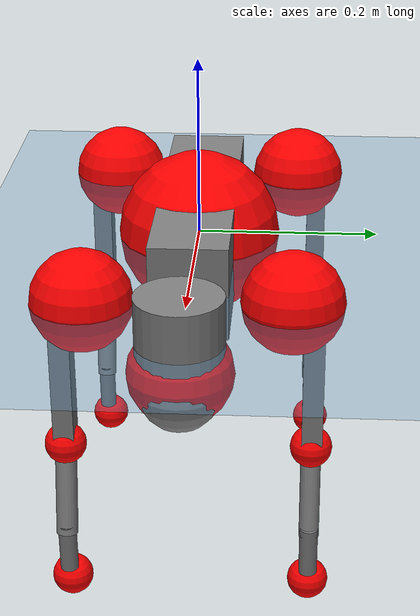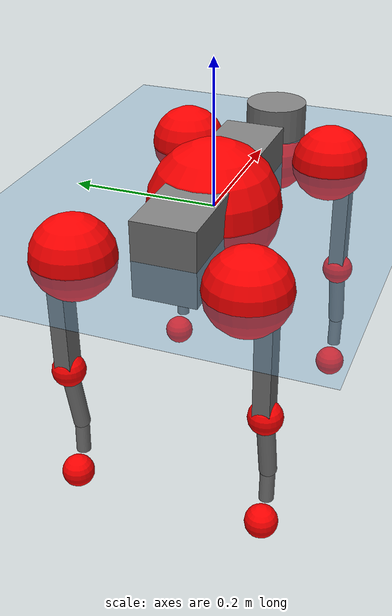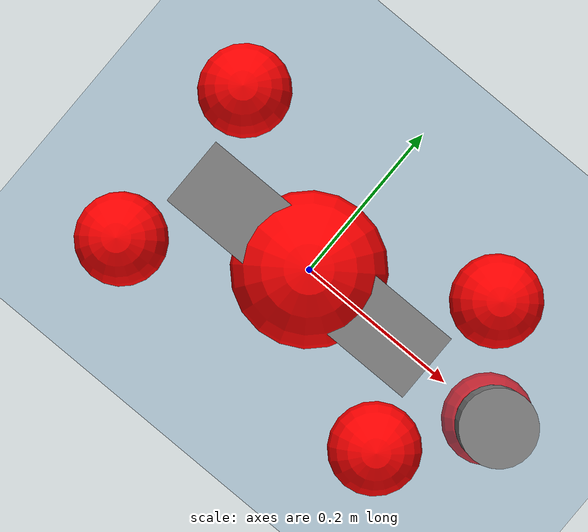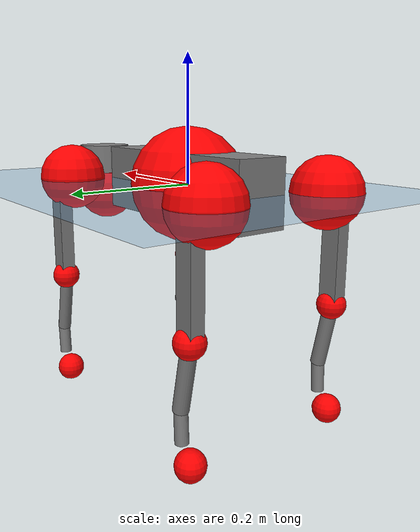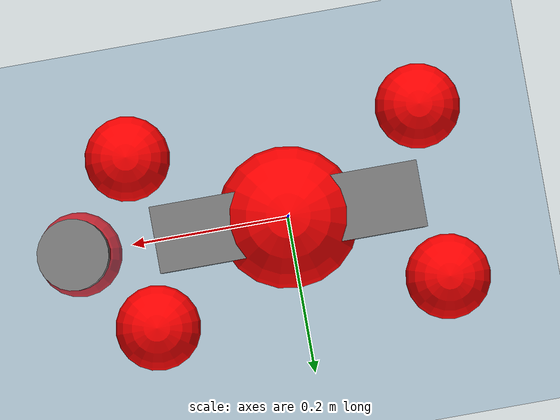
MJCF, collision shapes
<mujoco model="go2">
  <compiler angle="radian" assetdir="assets" balanceinertia="true" inertiafromgeom="false"/>

  <option timestep="0.005" density="1.2" viscosity="2e-05"/>

  <size nkey="1"/>

  <visual>
    <quality shadowsize="8192"/>
    <map shadowclip="0.5"/>
  </visual>

  <default>
    <default class="/">
      <geom contype="0" conaffinity="0" group="1" solref="-1000 -80"/>
      <site size="0.01 0.005 0.005" group="5"/>
      <general forcelimited="true" biastype="affine" gainprm="20" biasprm="0 -20 -0.5"/>
      <default class="go2">
        <joint armature="0.01" damping="0.01" frictionloss="0.2"/>
        <geom condim="1" margin="0.001"/>
        <default class="visual">
          <geom type="mesh" group="2"/>
        </default>
        <default class="collision">
          <geom group="3"/>
          <default class="foot">
            <geom size="0.022 0 0" condim="6" priority="1" friction="0.8 0.02 0.01" solimp="0.015 1 0.022"/>
          </default>
        </default>
        <default class="reward_collision_sphere">
          <geom group="5" rgba="1 0 0 1"/>
        </default>
      </default>
    </default>
  </default>

  <asset>
    <texture type="skybox" colorspace="auto" name="//unnamed_texture_0" builtin="gradient" rgb1="0.95 0.95 0.95" rgb2="0.95 0.95 0.95" width="100" height="600"/>
    <texture type="2d" colorspace="auto" name="texplane" builtin="checker" rgb1="0.345 0.575 0.748" rgb2="0.345 0.575 0.748" markrgb="1 1 1" width="512" height="512"/>
    <material name="MatPlane" class="/" texture="texplane" texuniform="true" texrepeat="2 2" specular="0.9"/>
    <material name="metal" class="/" rgba="0.9 0.95 0.95 1"/>
    <material name="black" class="/" rgba="0 0 0 1"/>
    <material name="white" class="/"/>
    <material name="gray" class="/" rgba="0.671705 0.692426 0.77427 1"/>
    <mesh name="base_0" class="/" file="base_0.obj"/>
    <mesh name="base_1" class="/" file="base_1.obj"/>
    <mesh name="base_2" class="/" file="base_2.obj"/>
    <mesh name="base_3" class="/" file="base_3.obj"/>
    <mesh name="base_4" class="/" file="base_4.obj"/>
    <mesh name="hip_0" class="/" file="hip_0.obj"/>
    <mesh name="hip_1" class="/" file="hip_1.obj"/>
    <mesh name="thigh_0" class="/" file="thigh_0.obj"/>
    <mesh name="thigh_1" class="/" file="thigh_1.obj"/>
    <mesh name="thigh_mirror_0" class="/" file="thigh_mirror_0.obj"/>
    <mesh name="thigh_mirror_1" class="/" file="thigh_mirror_1.obj"/>
    <mesh name="calf_0" class="/" file="calf_0.obj"/>
    <mesh name="calf_1" class="/" file="calf_1.obj"/>
    <mesh name="calf_mirror_0" class="/" file="calf_mirror_0.obj"/>
    <mesh name="calf_mirror_1" class="/" file="calf_mirror_1.obj"/>
    <mesh name="foot" class="/" file="foot.obj"/>
  </asset>

  <worldbody>
    <geom name="floor" class="/" size="100 100 0.125" type="plane" group="0" material="MatPlane"/>
    <light name="toplight_shadow" class="/" pos="0 0 5" dir="0.0990148 0.0990148 -0.990148" type="directional" ambient="0.04 0.04 0.04" diffuse="0.55 0.55 0.55" specular="0.12 0.12 0.12"/>
    <light name="toplight_fill" class="/" pos="0 0 5" dir="0.0990148 0.0990148 -0.990148" type="directional" castshadow="false" ambient="0.04 0.04 0.04" diffuse="0.3 0.3 0.3" specular="0.08 0.08 0.08"/>
    <body name="trunk" childclass="go2" pos="-0.000263999 -7.95427e-05 0.00086207" quat="1 4.63625e-05 -3.96042e-06 4.01912e-05">
      <inertial pos="0.0208922 0.000347204 -0.00485977" quat="-0.000751069 0.713408 -0.00131773 0.700747" mass="5.07192" diaginertia="0.0881343 0.0718296 0.00862289"/>
      <joint name="//unnamed_joint_0" type="free" armature="0" damping="0" frictionloss="0"/>
      <geom name="//unnamed_geom_1" class="visual" material="black" mesh="base_0"/>
      <geom name="//unnamed_geom_2" class="visual" material="black" mesh="base_1"/>
      <geom name="//unnamed_geom_3" class="visual" material="black" mesh="base_2"/>
      <geom name="//unnamed_geom_4" class="visual" material="white" mesh="base_3"/>
      <geom name="//unnamed_geom_5" class="visual" material="gray" mesh="base_4"/>
      <geom name="trunk_1" class="collision" size="0.170358 0.0423403 0.0516235" type="box"/>
      <geom name="trunk_2" class="collision" size="0.0452838 0.0407554" pos="0.274732 0 0.00812434" type="cylinder"/>
      <geom name="trunk_3" class="collision" size="0.0425668" pos="0.282444 0 -0.048746"/>
      <geom name="//unnamed_geom_9" class="reward_collision_sphere" size="0.0905676"/>
      <geom name="//unnamed_geom_10" class="reward_collision_sphere" size="0.0543405" pos="0.269912 0 -0.0365595"/>
      <site name="imu" pos="-0.027183 -0.000509692 0.0330457" size="0.00905676"/>
      <camera name="track" pos="0 -1.88124 0" quat="0.707107 0.707107 0 0" mode="trackcom"/>
      <camera name="ego_camera" pos="0.300759 0 0.0365595" quat="-0.5 -0.5 0.5 0.5"/>
      <body name="FL_hip" pos="0.18642 0.0434699 0.00213874" quat="1 3.26119e-06 -1.06034e-05 3.84755e-06">
        <inertial pos="-0.00523384 0.00239396 0.000158063" quat="0.499631 0.497568 0.503035 0.49975" mass="0.504685" diaginertia="0.000736028 0.000438364 0.000170489"/>
        <joint name="FL_hip_joint" pos="0 0 0" axis="0.999997 0.00130117 -0.00218755" range="-1.04275 1.03366" armature="0.00913841" damping="0.00209511" frictionloss="0.177869"/>
        <geom name="//unnamed_geom_11" class="visual" material="metal" mesh="hip_0"/>
        <geom name="//unnamed_geom_12" class="visual" material="gray" mesh="hip_1"/>
        <geom name="//unnamed_geom_13" class="collision" size="0.0416611 0.0181135" pos="0 0.0752497 0" quat="0.707107 0.707107 0 0" type="cylinder"/>
        <geom name="//unnamed_geom_14" class="reward_collision_sphere" size="0.0543405" pos="0 0.0658435 0"/>
        <body name="FL_thigh" pos="-0.000513396 0.0887077 0.00148978" quat="1 -0.000310801 -9.84256e-05 2.76113e-05">
          <inertial pos="-0.00420392 -0.0208015 -0.0266148" quat="0.829769 0.0837112 -0.0217594 0.551365" mass="0.843413" diaginertia="0.00493869 0.00428298 0.000308529"/>
          <joint name="FL_thigh_joint" pos="0 0 0" axis="-0.000230098 0.999998 -0.00172043" stiffness="0.00494062" range="-1.57859 3.50251" armature="0.0091899" damping="0.00464865" frictionloss="0.183446"/>
          <geom name="//unnamed_geom_15" class="visual" material="metal" mesh="thigh_0"/>
          <geom name="//unnamed_geom_16" class="visual" material="gray" mesh="thigh_1"/>
          <geom name="//unnamed_geom_17" class="collision" size="0.0964545 0.0110945 0.0153965" pos="0 0 -0.0865242" quat="0.707107 0 0.707107 0" type="box"/>
          <body name="FL_calf" pos="-0.00156592 -0.000732247 -0.173397" quat="1 7.81441e-05 -0.000383232 6.0921e-06">
            <inertial pos="0.005715 -0.000368912 -0.114685" quat="0.710929 0.00166712 -0.00224616 0.703259" mass="0.181216" diaginertia="0.00125173 0.00108025 1.88707e-05"/>
            <joint name="FL_calf_joint" pos="0 0 0" axis="-0.00415483 0.999989 -0.00200383" stiffness="0.00146111" range="-2.70605 -0.840194" armature="0.00869634" damping="0.00448088" frictionloss="0.173275"/>
            <geom name="//unnamed_geom_18" class="visual" material="gray" mesh="calf_0"/>
            <geom name="//unnamed_geom_19" class="visual" material="black" mesh="calf_1"/>
            <geom name="FL_calf0" class="collision" size="0.0108681 0.0543405" pos="0.00771177 0 -0.048746" quat="0.994493 0 -0.104807 0" type="cylinder"/>
            <geom name="//unnamed_geom_21" class="collision" size="0.00996243 0.0294345" pos="0.0192794 0 -0.12024" quat="0.999688 0 0.0249974 0" type="cylinder"/>
            <geom name="//unnamed_geom_22" class="visual" pos="0 0 -0.173048" quat="1 0 0 0" material="black" mesh="foot"/>
            <geom name="FL_foot" class="foot" size="0.017446" pos="-0.00192794 0 -0.173048"/>
            <geom name="//unnamed_geom_24" class="reward_collision_sphere" size="0.0226419"/>
            <geom name="//unnamed_geom_25" class="reward_collision_sphere" size="0.0226419" pos="-0.00192794 0 -0.173048"/>
            <site name="FL_foot" class="foot" pos="-0.00192794 0 -0.173048" size="0.00905676"/>
          </body>
        </body>
      </body>
      <body name="FR_hip" pos="0.187893 -0.0427228 -4.61132e-05" quat="1 -4.34817e-06 -5.70493e-06 -5.21186e-06">
        <inertial pos="-0.00532243 -0.00148335 -0.000635622" quat="0.498238 0.50567 0.498473 0.497576" mass="0.495239" diaginertia="0.000731327 0.000429716 0.000167991"/>
        <joint name="FR_hip_joint" pos="0 0 0" axis="0.999999 0.000155677 -0.00128958" stiffness="0.00364346" range="-1.04599 1.05148" armature="0.0092295" damping="0.0130582" frictionloss="0.183296"/>
        <geom name="//unnamed_geom_26" class="visual" pos="0 1.11672e-09 4.78984e-08" quat="4.63268e-05 1 0 0" material="metal" mesh="hip_0"/>
        <geom name="//unnamed_geom_27" class="visual" pos="0 1.81034e-09 -1.18471e-07" quat="4.63268e-05 1 0 0" material="gray" mesh="hip_1"/>
        <geom name="//unnamed_geom_28" class="collision" size="0.0416611 0.0181135" pos="0 -0.0752497 0" quat="0.707107 0.707107 0 0" type="cylinder"/>
        <geom name="//unnamed_geom_29" class="reward_collision_sphere" size="0.0543405" pos="0 -0.0658435 0"/>
        <body name="FR_thigh" pos="0.000733439 -0.0895349 0.00113522" quat="1 1.59464e-06 0.000116933 -0.000129624">
          <inertial pos="-0.00349058 0.0211944 -0.0261962" quat="0.551527 -0.0219035 0.0844952 0.829577" mass="0.862514" diaginertia="0.00498275 0.00429318 0.000311963"/>
          <joint name="FR_thigh_joint" pos="0 0 0" axis="0.00136803 -0.999999 -0.000146221" range="-3.48294 1.55313" armature="0.00909662" damping="0.0114707" frictionloss="0.189187"/>
          <geom name="//unnamed_geom_30" class="visual" material="metal" mesh="thigh_mirror_0"/>
          <geom name="//unnamed_geom_31" class="visual" material="gray" mesh="thigh_mirror_1"/>
          <geom name="//unnamed_geom_32" class="collision" size="0.0964545 0.0110945 0.0153965" pos="0 0 -0.0865242" quat="0.707107 0 0.707107 0" type="box"/>
          <body name="FR_calf" pos="-0.000387095 -0.000321662 -0.172452" quat="1 7.05622e-05 -1.94016e-05 -6.03186e-05">
            <inertial pos="0.00613883 0.000966475 -0.115203" quat="0.701859 -0.00113499 0.00113742 0.712314" mass="0.17866" diaginertia="0.00123294 0.00108502 1.87321e-05"/>
            <joint name="FR_calf_joint" pos="0 0 0" axis="-0.00130006 -0.999995 0.00301226" range="0.852596 2.70454" armature="0.0089558" damping="0.00889948" frictionloss="0.178647"/>
            <geom name="//unnamed_geom_33" class="visual" material="gray" mesh="calf_mirror_0"/>
            <geom name="//unnamed_geom_34" class="visual" material="black" mesh="calf_mirror_1"/>
            <geom name="FR_calf0" class="collision" size="0.0117738 0.0543405" pos="0.00963972 0 -0.048746" quat="0.995004 0 -0.0998334 0" type="cylinder"/>
            <geom name="//unnamed_geom_36" class="collision" size="0.00996243 0.0294345" pos="0.0192794 0 -0.12024" quat="0.999688 0 0.0249974 0" type="cylinder"/>
            <geom name="//unnamed_geom_37" class="visual" pos="0 0 -0.173048" quat="1 0 0 0" material="black" mesh="foot"/>
            <geom name="FR_foot" class="foot" size="0.0204697" pos="-0.00192794 0 -0.173048"/>
            <geom name="//unnamed_geom_39" class="reward_collision_sphere" size="0.0226419"/>
            <geom name="//unnamed_geom_40" class="reward_collision_sphere" size="0.0226419" pos="-0.00192794 0 -0.173048"/>
            <site name="FR_foot" class="foot" pos="-0.00192794 0 -0.173048" size="0.00905676"/>
          </body>
        </body>
      </body>
      <body name="RL_hip" pos="-0.18696 0.0434067 -9.78311e-05" quat="1 8.20383e-06 -0.000188451 -0.000170609">
        <inertial pos="0.00478728 0.00216805 -0.00035797" quat="0.507697 0.494881 0.498488 0.498845" mass="0.501506" diaginertia="0.000738898 0.000443057 0.000171379"/>
        <joint name="RL_hip_joint" pos="0 0 0" axis="-0.9998 0.0181581 0.00834271" range="-1.04774 1.02884" armature="0.0091467" damping="0.0165127" frictionloss="0.18194"/>
        <geom name="//unnamed_geom_41" class="visual" pos="-1.32014e-09 0 -2.58777e-07" quat="4.63268e-05 0 1 0" material="metal" mesh="hip_0"/>
        <geom name="//unnamed_geom_42" class="visual" pos="-2.1401e-09 0 -2.29499e-07" quat="4.63268e-05 0 1 0" material="gray" mesh="hip_1"/>
        <geom name="//unnamed_geom_43" class="collision" size="0.0416611 0.0181135" pos="0 0.0752497 0" quat="0.707107 0.707107 0 0" type="cylinder"/>
        <geom name="//unnamed_geom_44" class="reward_collision_sphere" size="0.0543405" pos="0 0.0658435 0"/>
        <body name="RL_thigh" pos="0.000863194 0.0889352 -0.00110094" quat="1 1.69123e-05 7.34734e-07 1.77331e-05">
          <inertial pos="-0.00356887 -0.0213465 -0.0266669" quat="0.829328 0.0862134 -0.019816 0.551715" mass="0.855051" diaginertia="0.00495474 0.00434507 0.000312092"/>
          <joint name="RL_thigh_joint" pos="0 0 0" axis="0.000998846 0.999999 0.000733613" range="-0.519389 4.5386" armature="0.00935141" damping="0.0119069" frictionloss="0.181572"/>
          <geom name="//unnamed_geom_45" class="visual" material="metal" mesh="thigh_0"/>
          <geom name="//unnamed_geom_46" class="visual" material="gray" mesh="thigh_1"/>
          <geom name="//unnamed_geom_47" class="collision" size="0.0964545 0.0110945 0.0153965" pos="0 0 -0.0865242" quat="0.707107 0 0.707107 0" type="box"/>
          <body name="RL_calf" pos="0.00115856 -0.000100656 -0.173093" quat="1 0.000149029 8.00209e-06 -6.05926e-05">
            <inertial pos="0.00612686 -0.000476417 -0.114567" quat="0.70983 0.00155944 -0.000613033 0.704371" mass="0.179097" diaginertia="0.00123434 0.00107595 1.86604e-05"/>
            <joint name="RL_calf_joint" pos="0 0 0" axis="0.00749963 0.99994 0.00804358" range="-2.71931 -0.835195" armature="0.00937449" damping="0.00227692" frictionloss="0.173248"/>
            <geom name="//unnamed_geom_48" class="visual" material="gray" mesh="calf_0"/>
            <geom name="//unnamed_geom_49" class="visual" material="black" mesh="calf_1"/>
            <geom name="RL_calf0" class="collision" size="0.0117738 0.0543405" pos="0.00963972 0 -0.048746" quat="0.995004 0 -0.0998334 0" type="cylinder"/>
            <geom name="//unnamed_geom_51" class="collision" size="0.00996243 0.0294345" pos="0.0192794 0 -0.12024" quat="0.999688 0 0.0249974 0" type="cylinder"/>
            <geom name="//unnamed_geom_52" class="visual" pos="0 0 -0.173048" quat="1 0 0 0" material="black" mesh="foot"/>
            <geom name="RL_foot" class="foot" size="0.0181139" pos="-0.00192794 0 -0.173048"/>
            <geom name="//unnamed_geom_54" class="reward_collision_sphere" size="0.0226419"/>
            <geom name="//unnamed_geom_55" class="reward_collision_sphere" size="0.0226419" pos="-0.00192794 0 -0.173048"/>
            <site name="RL_foot" class="foot" pos="-0.00192794 0 -0.173048" size="0.00905676"/>
          </body>
        </body>
      </body>
      <body name="RR_hip" pos="-0.186663 -0.0447151 -0.00187683" quat="1 0.00012447 5.16193e-05 0.000266468">
        <inertial pos="0.00507587 -0.00195394 -0.000351756" quat="0.497566 0.498156 0.498315 0.505915" mass="0.508052" diaginertia="0.000740986 0.000441888 0.000170561"/>
        <joint name="RR_hip_joint" pos="0 0 0" axis="-0.999999 -0.000853519 0.00109701" stiffness="0.00229222" range="-1.03726 1.0573" armature="0.00907847" damping="0.00723573" frictionloss="0.179805"/>
        <geom name="//unnamed_geom_56" class="visual" pos="1.31933e-09 1.11672e-09 -3.06676e-07" quat="2.14617e-09 4.63268e-05 4.63268e-05 -1" material="metal" mesh="hip_0"/>
        <geom name="//unnamed_geom_57" class="visual" pos="2.1421e-09 1.81034e-09 -1.11027e-07" quat="2.14617e-09 4.63268e-05 4.63268e-05 -1" material="gray" mesh="hip_1"/>
        <geom name="//unnamed_geom_58" class="collision" size="0.0416611 0.0181135" pos="0 -0.0752497 0" quat="0.707107 0.707107 0 0" type="cylinder"/>
        <geom name="//unnamed_geom_59" class="reward_collision_sphere" size="0.0543405" pos="0 -0.0658435 0"/>
        <body name="RR_thigh" pos="0.000193975 -0.0898536 -0.0011125" quat="1 -0.00016767 -5.83695e-05 -0.000323656">
          <inertial pos="-0.00431065 0.0206459 -0.0262422" quat="0.551732 -0.0200031 0.0847373 0.829464" mass="0.84467" diaginertia="0.00493449 0.00426193 0.000310159"/>
          <joint name="RR_thigh_joint" pos="0 0 0" axis="0.00358461 -0.999989 -0.00308177" range="-4.54108 0.521909" armature="0.00915317" damping="0.0153439" frictionloss="0.180181"/>
          <geom name="//unnamed_geom_60" class="visual" material="metal" mesh="thigh_mirror_0"/>
          <geom name="//unnamed_geom_61" class="visual" material="gray" mesh="thigh_mirror_1"/>
          <geom name="//unnamed_geom_62" class="collision" size="0.0964545 0.0110945 0.0153965" pos="0 0 -0.0865242" quat="0.707107 0 0.707107 0" type="box"/>
          <body name="RR_calf" pos="0.000841332 -0.0014026 -0.173489" quat="1 0.00026527 -9.22064e-05 0.000288956">
            <inertial pos="0.0060988 0.000578816 -0.115301" quat="0.704922 -0.00327759 0.0019847 0.709275" mass="0.178463" diaginertia="0.00124783 0.00106635 1.87183e-05"/>
            <joint name="RR_calf_joint" pos="0 0 0" axis="0.00106914 -0.99999 0.00430649" range="0.830848 2.71962" armature="0.00891561" damping="0.00920152" frictionloss="0.181529"/>
            <geom name="//unnamed_geom_63" class="visual" material="gray" mesh="calf_mirror_0"/>
            <geom name="//unnamed_geom_64" class="visual" material="black" mesh="calf_mirror_1"/>
            <geom name="RR_calf0" class="collision" size="0.0117738 0.0543405" pos="0.00963972 0 -0.048746" quat="0.995004 0 -0.0998334 0" type="cylinder"/>
            <geom name="//unnamed_geom_66" class="collision" size="0.00996243 0.0294345" pos="0.0192794 0 -0.12024" quat="0.999688 0 0.0249974 0" type="cylinder"/>
            <geom name="//unnamed_geom_67" class="visual" pos="0 0 -0.173048" quat="1 0 0 0" material="black" mesh="foot"/>
            <geom name="RR_foot" class="foot" size="0.0219465" pos="-0.00192794 0 -0.173048"/>
            <geom name="//unnamed_geom_69" class="reward_collision_sphere" size="0.0226419"/>
            <geom name="//unnamed_geom_70" class="reward_collision_sphere" size="0.0226419" pos="-0.00192794 0 -0.173048"/>
            <site name="RR_foot" class="foot" pos="-0.00192794 0 -0.173048" size="0.00905676"/>
          </body>
        </body>
      </body>
    </body>
  </worldbody>

  <contact>
    <pair class="/" geom1="floor" geom2="FL_foot" name="//unnamed_contact_0"/>
    <pair class="/" geom1="floor" geom2="FR_foot" name="//unnamed_contact_1"/>
    <pair class="/" geom1="floor" geom2="RL_foot" name="//unnamed_contact_2"/>
    <pair class="/" geom1="floor" geom2="RR_foot" name="//unnamed_contact_3"/>
  </contact>

  <actuator>
    <general name="FL_hip" class="/" joint="FL_hip_joint" forcerange="-21.2291 21.2291" gainprm="18.4238" biasprm="0 -18.4238 -0.450674"/>
    <general name="FL_thigh" class="/" joint="FL_thigh_joint" forcerange="-22.1893 22.1893" gainprm="18.4238" biasprm="0 -18.4238 -0.450674"/>
    <general name="FL_calf" class="/" joint="FL_calf_joint" forcerange="-40.2376 40.2376" gainprm="18.4238" biasprm="0 -18.4238 -0.450674"/>
    <general name="FR_hip" class="/" joint="FR_hip_joint" forcerange="-22.1255 22.1255" gainprm="18.4238" biasprm="0 -18.4238 -0.450674"/>
    <general name="FR_thigh" class="/" joint="FR_thigh_joint" forcerange="-20.9932 20.9932" gainprm="18.4238" biasprm="0 -18.4238 -0.450674"/>
    <general name="FR_calf" class="/" joint="FR_calf_joint" forcerange="-41.4896 41.4896" gainprm="18.4238" biasprm="0 -18.4238 -0.450674"/>
    <general name="RL_hip" class="/" joint="RL_hip_joint" forcerange="-21.4326 21.4326" gainprm="18.4238" biasprm="0 -18.4238 -0.450674"/>
    <general name="RL_thigh" class="/" joint="RL_thigh_joint" forcerange="-21.6781 21.6781" gainprm="18.4238" biasprm="0 -18.4238 -0.450674"/>
    <general name="RL_calf" class="/" joint="RL_calf_joint" forcerange="-40.3265 40.3265" gainprm="18.4238" biasprm="0 -18.4238 -0.450674"/>
    <general name="RR_hip" class="/" joint="RR_hip_joint" forcerange="-21.4297 21.4297" gainprm="18.4238" biasprm="0 -18.4238 -0.450674"/>
    <general name="RR_thigh" class="/" joint="RR_thigh_joint" forcerange="-21.2466 21.2466" gainprm="18.4238" biasprm="0 -18.4238 -0.450674"/>
    <general name="RR_calf" class="/" joint="RR_calf_joint" forcerange="-40.7664 40.7664" gainprm="18.4238" biasprm="0 -18.4238 -0.450674"/>
  </actuator>

  <sensor>
    <gyro site="imu" name="imu_angular_velocity"/>
    <velocimeter site="imu" name="imu_linear_velocity"/>
    <framelinvel objtype="site" objname="FL_foot" name="FL_foot_global_linear_velocity"/>
    <framelinvel objtype="site" objname="FR_foot" name="FR_foot_global_linear_velocity"/>
    <framelinvel objtype="site" objname="RL_foot" name="RL_foot_global_linear_velocity"/>
    <framelinvel objtype="site" objname="RR_foot" name="RR_foot_global_linear_velocity"/>
  </sensor>

  <keyframe>
    <key name="home" qpos="0 0 0.325 1 0 0 0 0.1 0.8 -1.5 -0.1 -0.8 1.5 -0.1 0.8 -1.5 0.1 -0.8 1.5"/>
  </keyframe>
</mujoco>
